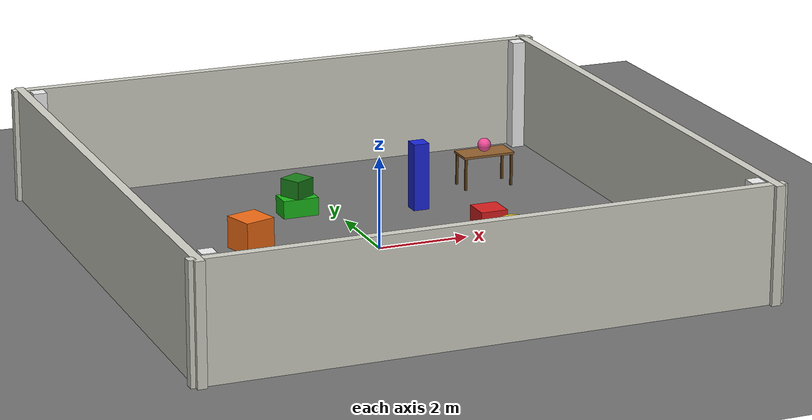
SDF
<?xml version="1.0" ?>
<sdf version="1.6">
  <world name="sensor_demo">

    <!-- PHYSICS                                                           -->
    <physics name="1ms" type="ignored">
      <max_step_size>0.001</max_step_size>
      <real_time_factor>1.0</real_time_factor>
    </physics>

    <!-- SYSTEM PLUGINS                                                    -->
    <plugin filename="gz-sim-physics-system"
            name="gz::sim::systems::Physics"/>
    <plugin filename="gz-sim-user-commands-system"
            name="gz::sim::systems::UserCommands"/>
    <plugin filename="gz-sim-scene-broadcaster-system"
            name="gz::sim::systems::SceneBroadcaster"/>
    <plugin filename="gz-sim-contact-system"
            name="gz::sim::systems::Contact"/>
    <!-- Camera and lidar rendering -->
    <plugin filename="gz-sim-sensors-system"
            name="gz::sim::systems::Sensors">
      <render_engine>ogre2</render_engine>
    </plugin>
    <!-- IMU -->
    <plugin filename="gz-sim-imu-system"
            name="gz::sim::systems::Imu"/>

    <!-- LIGHTING                                                          -->
    <light type="directional" name="sun">
      <cast_shadows>true</cast_shadows>
      <pose>0 0 10 0 0 0</pose>
      <diffuse>0.9 0.9 0.85 1</diffuse>
      <specular>0.3 0.3 0.3 1</specular>
      <attenuation>
        <range>1000</range><constant>0.9</constant>
        <linear>0.01</linear><quadratic>0.001</quadratic>
      </attenuation>
      <direction>-0.5 0.1 -0.9</direction>
    </light>

    <!-- Four ceiling point lights for even camera illumination -->
    <light type="point" name="ceil_ne">
      <pose>4 4 2.4 0 0 0</pose>
      <diffuse>1 1 1 1</diffuse><specular>0.2 0.2 0.2 1</specular>
      <attenuation><range>12</range><constant>0.4</constant>
        <linear>0.05</linear><quadratic>0.01</quadratic></attenuation>
      <cast_shadows>false</cast_shadows>
    </light>
    <light type="point" name="ceil_nw">
      <pose>-4 4 2.4 0 0 0</pose>
      <diffuse>1 1 1 1</diffuse><specular>0.2 0.2 0.2 1</specular>
      <attenuation><range>12</range><constant>0.4</constant>
        <linear>0.05</linear><quadratic>0.01</quadratic></attenuation>
      <cast_shadows>false</cast_shadows>
    </light>
    <light type="point" name="ceil_se">
      <pose>4 -4 2.4 0 0 0</pose>
      <diffuse>1 1 1 1</diffuse><specular>0.2 0.2 0.2 1</specular>
      <attenuation><range>12</range><constant>0.4</constant>
        <linear>0.05</linear><quadratic>0.01</quadratic></attenuation>
      <cast_shadows>false</cast_shadows>
    </light>
    <light type="point" name="ceil_sw">
      <pose>-4 -4 2.4 0 0 0</pose>
      <diffuse>1 1 1 1</diffuse><specular>0.2 0.2 0.2 1</specular>
      <attenuation><range>12</range><constant>0.4</constant>
        <linear>0.05</linear><quadratic>0.01</quadratic></attenuation>
      <cast_shadows>false</cast_shadows>
    </light>

    <!-- GROUND PLANE                                                      -->
    <model name="ground_plane">
      <static>true</static>
      <link name="link">
        <collision name="collision">
          <geometry><plane><normal>0 0 1</normal><size>100 100</size></plane></geometry>
        </collision>
        <visual name="visual">
          <geometry><plane><normal>0 0 1</normal><size>100 100</size></plane></geometry>
          <material>
            <ambient>0.45 0.45 0.45 1</ambient>
            <diffuse>0.45 0.45 0.45 1</diffuse>
            <specular>0.05 0.05 0.05 1</specular>
          </material>
        </visual>
      </link>
    </model>

    <!-- ROOM WALLS  (12 x 12 m interior, 2.5 m tall)                    -->
    <model name="wall_north">
      <static>true</static><pose>0 6 1.25 0 0 0</pose>
      <link name="link">
        <collision name="c"><geometry><box><size>12.4 0.2 2.5</size></box></geometry></collision>
        <visual name="v"><geometry><box><size>12.4 0.2 2.5</size></box></geometry>
          <material><ambient>0.82 0.82 0.78 1</ambient><diffuse>0.82 0.82 0.78 1</diffuse></material>
        </visual>
      </link>
    </model>

    <model name="wall_south">
      <static>true</static><pose>0 -6 1.25 0 0 0</pose>
      <link name="link">
        <collision name="c"><geometry><box><size>12.4 0.2 2.5</size></box></geometry></collision>
        <visual name="v"><geometry><box><size>12.4 0.2 2.5</size></box></geometry>
          <material><ambient>0.82 0.82 0.78 1</ambient><diffuse>0.82 0.82 0.78 1</diffuse></material>
        </visual>
      </link>
    </model>

    <model name="wall_east">
      <static>true</static><pose>6 0 1.25 0 0 0</pose>
      <link name="link">
        <collision name="c"><geometry><box><size>0.2 12.4 2.5</size></box></geometry></collision>
        <visual name="v"><geometry><box><size>0.2 12.4 2.5</size></box></geometry>
          <material><ambient>0.82 0.82 0.78 1</ambient><diffuse>0.82 0.82 0.78 1</diffuse></material>
        </visual>
      </link>
    </model>

    <model name="wall_west">
      <static>true</static><pose>-6 0 1.25 0 0 0</pose>
      <link name="link">
        <collision name="c"><geometry><box><size>0.2 12.4 2.5</size></box></geometry></collision>
        <visual name="v"><geometry><box><size>0.2 12.4 2.5</size></box></geometry>
          <material><ambient>0.82 0.82 0.78 1</ambient><diffuse>0.82 0.82 0.78 1</diffuse></material>
        </visual>
      </link>
    </model>

    <!-- OBSTACLES                                                         -->
    <!-- All placed so cameras (front/rear/left/right) and both lidars    -->
    <!-- (safety scanners at ~19 cm height, up to 10 m range) see them.  -->

    <!-- RED box — directly ahead of robot (~2.5 m, front camera + lidar) -->
    <model name="box_red">
      <static>true</static><pose>2.5 0 0.3 0 0 0</pose>
      <link name="link">
        <collision name="c"><geometry><box><size>0.6 0.6 0.6</size></box></geometry></collision>
        <visual name="v"><geometry><box><size>0.6 0.6 0.6</size></box></geometry>
          <material>
            <ambient>0.85 0.12 0.12 1</ambient><diffuse>0.85 0.12 0.12 1</diffuse>
            <specular>0.4 0.1 0.1 1</specular>
          </material>
        </visual>
      </link>
    </model>

    <!-- BLUE tall pillar — front-left (camera + lidar) -->
    <model name="pillar_blue">
      <static>true</static><pose>1.8 2.2 0.75 0 0 0</pose>
      <link name="link">
        <collision name="c"><geometry><box><size>0.35 0.35 1.5</size></box></geometry></collision>
        <visual name="v"><geometry><box><size>0.35 0.35 1.5</size></box></geometry>
          <material>
            <ambient>0.1 0.15 0.85 1</ambient><diffuse>0.1 0.15 0.85 1</diffuse>
            <specular>0.1 0.1 0.4 1</specular>
          </material>
        </visual>
      </link>
    </model>

    <!-- YELLOW cylinder — front-right (front + right camera, front lidar) -->
    <model name="cylinder_yellow">
      <static>true</static><pose>2.2 -2 0.5 0 0 0</pose>
      <link name="link">
        <collision name="c"><geometry><cylinder><radius>0.3</radius><length>1.0</length></cylinder></geometry></collision>
        <visual name="v"><geometry><cylinder><radius>0.3</radius><length>1.0</length></cylinder></geometry>
          <material>
            <ambient>0.95 0.82 0.1 1</ambient><diffuse>0.95 0.82 0.1 1</diffuse>
            <specular>0.3 0.3 0.05 1</specular>
          </material>
        </visual>
      </link>
    </model>

    <!-- GREEN crate stack — left side (left camera + front lidar) -->
    <model name="crate_green_bottom">
      <static>true</static><pose>-0.8 2.8 0.2 0 0 0</pose>
      <link name="link">
        <collision name="c"><geometry><box><size>0.8 0.5 0.4</size></box></geometry></collision>
        <visual name="v"><geometry><box><size>0.8 0.5 0.4</size></box></geometry>
          <material><ambient>0.1 0.72 0.1 1</ambient><diffuse>0.1 0.72 0.1 1</diffuse></material>
        </visual>
      </link>
    </model>
    <model name="crate_green_top">
      <static>true</static><pose>-0.8 2.8 0.62 0 0 0.5</pose>
      <link name="link">
        <collision name="c"><geometry><box><size>0.5 0.5 0.4</size></box></geometry></collision>
        <visual name="v"><geometry><box><size>0.5 0.5 0.4</size></box></geometry>
          <material><ambient>0.1 0.5 0.1 1</ambient><diffuse>0.1 0.5 0.1 1</diffuse></material>
        </visual>
      </link>
    </model>

    <!-- ORANGE box — rear-left (rear camera + rear lidar) -->
    <model name="box_orange">
      <static>true</static><pose>-2.5 1.0 0.35 0 0 0.3</pose>
      <link name="link">
        <collision name="c"><geometry><box><size>0.7 0.7 0.7</size></box></geometry></collision>
        <visual name="v"><geometry><box><size>0.7 0.7 0.7</size></box></geometry>
          <material>
            <ambient>0.95 0.42 0.08 1</ambient><diffuse>0.95 0.42 0.08 1</diffuse>
            <specular>0.3 0.2 0.05 1</specular>
          </material>
        </visual>
      </link>
    </model>

    <!-- PURPLE cylinder — rear-right (rear + right camera, rear lidar) -->
    <model name="cylinder_purple">
      <static>true</static><pose>-2.2 -2.5 0.4 0 0 0</pose>
      <link name="link">
        <collision name="c"><geometry><cylinder><radius>0.28</radius><length>0.8</length></cylinder></geometry></collision>
        <visual name="v"><geometry><cylinder><radius>0.28</radius><length>0.8</length></cylinder></geometry>
          <material>
            <ambient>0.55 0.1 0.75 1</ambient><diffuse>0.55 0.1 0.75 1</diffuse>
            <specular>0.2 0.05 0.3 1</specular>
          </material>
        </visual>
      </link>
    </model>

    <!-- CYAN sphere on a pedestal — right side -->
    <model name="pedestal">
      <static>true</static><pose>3 -3.5 0.35 0 0 0</pose>
      <link name="link">
        <collision name="c"><geometry><cylinder><radius>0.2</radius><length>0.7</length></cylinder></geometry></collision>
        <visual name="v"><geometry><cylinder><radius>0.2</radius><length>0.7</length></cylinder></geometry>
          <material><ambient>0.6 0.6 0.6 1</ambient><diffuse>0.6 0.6 0.6 1</diffuse></material>
        </visual>
      </link>
    </model>
    <model name="sphere_cyan">
      <static>true</static><pose>3 -3.5 0.85 0 0 0</pose>
      <link name="link">
        <collision name="c"><geometry><sphere><radius>0.18</radius></sphere></geometry></collision>
        <visual name="v"><geometry><sphere><radius>0.18</radius></sphere></geometry>
          <material>
            <ambient>0.05 0.85 0.85 1</ambient><diffuse>0.05 0.85 0.85 1</diffuse>
            <specular>0.3 0.8 0.8 1</specular>
          </material>
        </visual>
      </link>
    </model>

    <!-- WOODEN TABLE with PINK sphere on top — north-east area -->
    <model name="table_top">
      <static>true</static><pose>3.8 3.2 0.75 0 0 0</pose>
      <link name="link">
        <collision name="c"><geometry><box><size>1.2 0.6 0.05</size></box></geometry></collision>
        <visual name="v"><geometry><box><size>1.2 0.6 0.05</size></box></geometry>
          <material><ambient>0.58 0.38 0.18 1</ambient><diffuse>0.58 0.38 0.18 1</diffuse></material>
        </visual>
      </link>
    </model>
    <model name="table_leg_fl">
      <static>true</static><pose>3.25 3.45 0.36 0 0 0</pose>
      <link name="link">
        <collision name="c"><geometry><box><size>0.05 0.05 0.72</size></box></geometry></collision>
        <visual name="v"><geometry><box><size>0.05 0.05 0.72</size></box></geometry>
          <material><ambient>0.4 0.25 0.1 1</ambient><diffuse>0.4 0.25 0.1 1</diffuse></material>
        </visual>
      </link>
    </model>
    <model name="table_leg_fr">
      <static>true</static><pose>4.35 3.45 0.36 0 0 0</pose>
      <link name="link">
        <collision name="c"><geometry><box><size>0.05 0.05 0.72</size></box></geometry></collision>
        <visual name="v"><geometry><box><size>0.05 0.05 0.72</size></box></geometry>
          <material><ambient>0.4 0.25 0.1 1</ambient><diffuse>0.4 0.25 0.1 1</diffuse></material>
        </visual>
      </link>
    </model>
    <model name="table_leg_rl">
      <static>true</static><pose>3.25 2.95 0.36 0 0 0</pose>
      <link name="link">
        <collision name="c"><geometry><box><size>0.05 0.05 0.72</size></box></geometry></collision>
        <visual name="v"><geometry><box><size>0.05 0.05 0.72</size></box></geometry>
          <material><ambient>0.4 0.25 0.1 1</ambient><diffuse>0.4 0.25 0.1 1</diffuse></material>
        </visual>
      </link>
    </model>
    <model name="table_leg_rr">
      <static>true</static><pose>4.35 2.95 0.36 0 0 0</pose>
      <link name="link">
        <collision name="c"><geometry><box><size>0.05 0.05 0.72</size></box></geometry></collision>
        <visual name="v"><geometry><box><size>0.05 0.05 0.72</size></box></geometry>
          <material><ambient>0.4 0.25 0.1 1</ambient><diffuse>0.4 0.25 0.1 1</diffuse></material>
        </visual>
      </link>
    </model>
    <model name="sphere_pink">
      <static>true</static><pose>3.8 3.2 0.93 0 0 0</pose>
      <link name="link">
        <collision name="c"><geometry><sphere><radius>0.15</radius></sphere></geometry></collision>
        <visual name="v"><geometry><sphere><radius>0.15</radius></sphere></geometry>
          <material>
            <ambient>0.95 0.3 0.6 1</ambient><diffuse>0.95 0.3 0.6 1</diffuse>
            <specular>0.5 0.2 0.4 1</specular>
          </material>
        </visual>
      </link>
    </model>

    <!-- WHITE structural pillars at room corners (lidar boundary markers) -->
    <model name="pillar_ne">
      <static>true</static><pose>5.7 5.7 1.25 0 0 0</pose>
      <link name="link">
        <collision name="c"><geometry><box><size>0.3 0.3 2.5</size></box></geometry></collision>
        <visual name="v"><geometry><box><size>0.3 0.3 2.5</size></box></geometry>
          <material><ambient>0.95 0.95 0.95 1</ambient><diffuse>0.95 0.95 0.95 1</diffuse></material>
        </visual>
      </link>
    </model>
    <model name="pillar_nw">
      <static>true</static><pose>-5.7 5.7 1.25 0 0 0</pose>
      <link name="link">
        <collision name="c"><geometry><box><size>0.3 0.3 2.5</size></box></geometry></collision>
        <visual name="v"><geometry><box><size>0.3 0.3 2.5</size></box></geometry>
          <material><ambient>0.95 0.95 0.95 1</ambient><diffuse>0.95 0.95 0.95 1</diffuse></material>
        </visual>
      </link>
    </model>
    <model name="pillar_se">
      <static>true</static><pose>5.7 -5.7 1.25 0 0 0</pose>
      <link name="link">
        <collision name="c"><geometry><box><size>0.3 0.3 2.5</size></box></geometry></collision>
        <visual name="v"><geometry><box><size>0.3 0.3 2.5</size></box></geometry>
          <material><ambient>0.95 0.95 0.95 1</ambient><diffuse>0.95 0.95 0.95 1</diffuse></material>
        </visual>
      </link>
    </model>
    <model name="pillar_sw">
      <static>true</static><pose>-5.7 -5.7 1.25 0 0 0</pose>
      <link name="link">
        <collision name="c"><geometry><box><size>0.3 0.3 2.5</size></box></geometry></collision>
        <visual name="v"><geometry><box><size>0.3 0.3 2.5</size></box></geometry>
          <material><ambient>0.95 0.95 0.95 1</ambient><diffuse>0.95 0.95 0.95 1</diffuse></material>
        </visual>
      </link>
    </model>

  </world>
</sdf>
